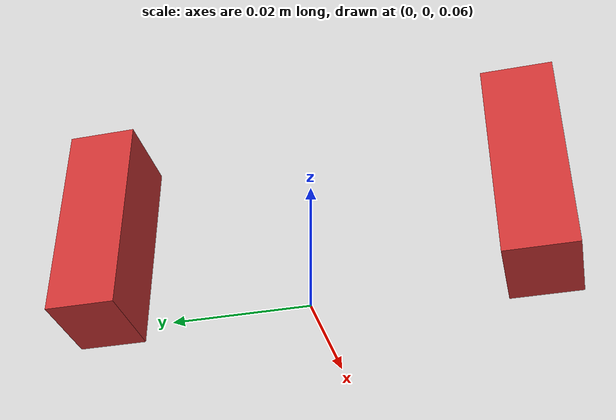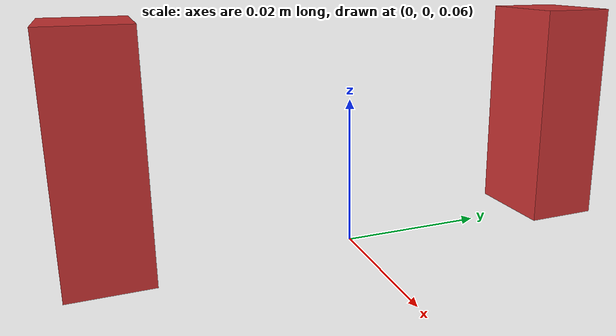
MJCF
<mujoco model="agforge_demo">
  <compiler angle="degree" inertiafromgeom="true"/>

  <default>
    <joint armature="0.1" damping="1"/>
  </default>

  <asset>
    <material name="gripper" rgba="0.8 0.2 0.2 1"/>
  </asset>

  <worldbody>
    <light cutoff="100" diffuse="1 1 1" dir="0 0 -1" directional="true" pos="0 0 3"/>
    <body name="base_plate" pos="0 0 0">
      <joint name="x_slider" type="slide" axis="1 0 0" range="-0.0571 0.0571"/>
      <inertial pos="0 0 0" mass="1e-7" diaginertia="1e-7 1e-7 1e-7"/>

      <body name="hinge_cylinder" pos="0 0 0.0762">
        <joint name="x_hinge" type="hinge" axis="1 0 0"/>
        <inertial pos="0 0 0" mass="1e-7" diaginertia="1e-7 1e-7 1e-7"/>

        <body name="clamp_bar" pos="0 0 0">
          <body name="left_gripper" pos="0 -0.0318 0">
            <joint name="left_gripper_slide" type="slide" axis="0 1 0" range="0.0000 0.0216"/>
            <geom type="box" size="0.0063 0.0051 0.0152" material="gripper"/>
          </body>
          <body name="right_gripper" pos="0 0.0318 0">
            <joint name="right_gripper_slide" type="slide" axis="0 -1 0" range="0.0000 0.0216"/>
            <geom type="box" size="0.0063 0.0051 0.0152" material="gripper"/>
          </body>
        </body>
      </body>
    </body>
  </worldbody>

  <actuator>
    <position joint="x_slider"           kp="91836734.69387755" kv="60609.152673132645"/>
    <position joint="x_hinge"            kp="91836734.69387755" kv="60609.152673132645"/>
    <position joint="left_gripper_slide"  kp="91836734.69387755" kv="60609.152673132645"/>
    <position joint="right_gripper_slide" kp="91836734.69387755" kv="60609.152673132645"/>
  </actuator>
</mujoco>
